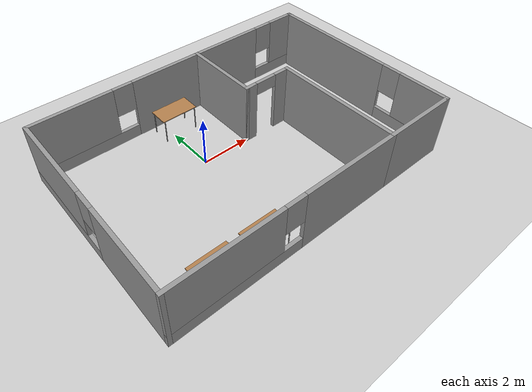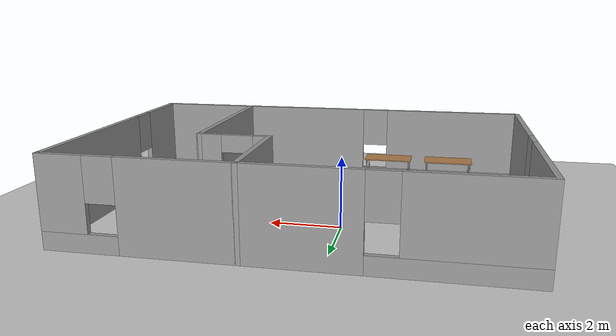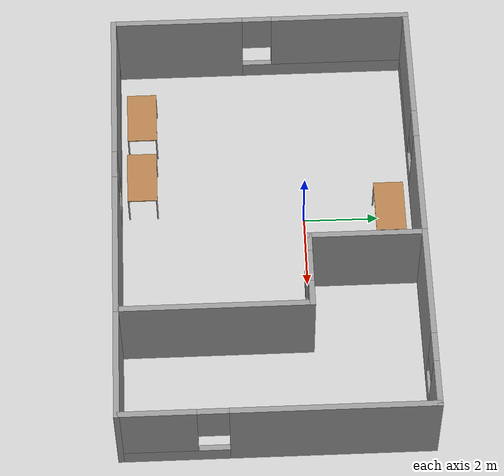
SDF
<sdf version="1.7">
 <world name="default">
  <light name="sun" type="directional">
   <pose>0 0 10 0 -0 0</pose>
   <diffuse>0.8 0.8 0.8 1</diffuse>
   <specular>0.2 0.2 0.2 1</specular>
   <attenuation>
    <range>1000</range>
    <constant>0.9</constant>
    <linear>0.01</linear>
    <quadratic>0.001</quadratic>
   </attenuation>
   <direction>-0.5 0.1 -0.9</direction>
   <spot><inner_angle>0</inner_angle><outer_angle>0</outer_angle><falloff>0</falloff></spot>
  </light>
  <model name="ground_plane">
   <static>1</static>
   <link name="link">
    <collision name="collision">
     <geometry><plane><normal>0 0 1</normal><size>100 100</size></plane></geometry>
     <surface><friction><ode><mu>100</mu><mu2>50</mu2></ode></friction></surface>
    </collision>
    <visual name="visual">
     <cast_shadows>0</cast_shadows>
     <geometry><plane><normal>0 0 1</normal><size>100 100</size></plane></geometry>
     <material>
      <script><uri>file://media/materials/scripts/gazebo.material</uri><name>Gazebo/Grey</name></script>
     </material>
    </visual>
   </link>
  </model>
  <gravity>0 0 -9.8</gravity>
  <magnetic_field>6e-06 2.3e-05 -4.2e-05</magnetic_field>
  <atmosphere type="adiabatic"/>
  <physics type="ode">
   <max_step_size>0.001</max_step_size>
   <real_time_factor>1</real_time_factor>
   <real_time_update_rate>1000</real_time_update_rate>
  </physics>
  <scene><ambient>0.4 0.4 0.4 1</ambient><background>0.7 0.7 0.7 1</background><shadows>1</shadows></scene>
  <spherical_coordinates>
   <surface_model>EARTH_WGS84</surface_model>
   <latitude_deg>0</latitude_deg>
   <longitude_deg>0</longitude_deg>
   <elevation>0</elevation>
   <heading_deg>0</heading_deg>
  </spherical_coordinates>
  <model name="Untitled">
   <pose>1 -1 0 0 -0 0</pose>
   <link name="Wall_11">
    <collision name="Wall_11_Collision">
     <geometry><box><size>3.15 0.15 2.5</size></box></geometry>
     <pose>0 0 1.25 0 -0 0</pose>
    </collision>
    <visual name="Wall_11_Visual">
     <pose>0 0 1.25 0 -0 0</pose>
     <geometry><box><size>3.15 0.15 2.5</size></box></geometry>
     <material>
      <script><uri>file://media/materials/scripts/gazebo.material</uri><name>Gazebo/Grey</name></script>
      <ambient>1 1 1 1</ambient>
     </material>
     <meta><layer>0</layer></meta>
    </visual>
    <pose>1 2.5 0 0 -0 -1.5708</pose>
   </link>
   <link name="Wall_12">
    <pose>2 1 0 0 -0 0</pose>
    <visual name="Wall_12_Visual_0">
     <pose>-0.811577 0 1.25 0 -0 0</pose>
     <geometry><box><size>0.526845 0.15 2.5</size></box></geometry>
     <material>
      <script><uri>file://media/materials/scripts/gazebo.material</uri><name>Gazebo/Grey</name></script>
      <ambient>1 1 1 1</ambient>
     </material>
     <meta><layer>0</layer></meta>
    </visual>
    <collision name="Wall_12_Collision_0">
     <geometry><box><size>0.526845 0.15 2.5</size></box></geometry>
     <pose>-0.811577 0 1.25 0 -0 0</pose>
    </collision>
    <visual name="Wall_12_Visual_1">
     <pose>0.713423 0 1.25 0 -0 0</pose>
     <geometry><box><size>0.723155 0.15 2.5</size></box></geometry>
     <material>
      <script><uri>file://media/materials/scripts/gazebo.material</uri><name>Gazebo/Grey</name></script>
      <ambient>1 1 1 1</ambient>
     </material>
     <meta><layer>0</layer></meta>
    </visual>
    <collision name="Wall_12_Collision_1">
     <geometry><box><size>0.723155 0.15 2.5</size></box></geometry>
     <pose>0.713423 0 1.25 0 -0 0</pose>
    </collision>
    <visual name="Wall_12_Visual_2">
     <pose>-0.098155 0 2.25 0 -0 0</pose>
     <geometry><box><size>0.9 0.15 0.5</size></box></geometry>
     <material>
      <script><uri>file://media/materials/scripts/gazebo.material</uri><name>Gazebo/Grey</name></script>
      <ambient>1 1 1 1</ambient>
     </material>
     <meta><layer>0</layer></meta>
    </visual>
    <collision name="Wall_12_Collision_2">
     <geometry><box><size>0.9 0.15 0.5</size></box></geometry>
     <pose>-0.098155 0 2.25 0 -0 0</pose>
    </collision>
   </link>
   <link name="Wall_13">
    <collision name="Wall_13_Collision">
     <geometry><box><size>5.15 0.15 2.5</size></box></geometry>
     <pose>0 0 1.25 0 -0 0</pose>
    </collision>
    <visual name="Wall_13_Visual">
     <pose>0 0 1.25 0 -0 0</pose>
     <geometry><box><size>5.15 0.15 2.5</size></box></geometry>
     <material>
      <script><uri>file://media/materials/scripts/gazebo.material</uri><name>Gazebo/Grey</name></script>
      <ambient>1 1 1 1</ambient>
     </material>
     <meta><layer>0</layer></meta>
    </visual>
    <pose>3 -1.5 0 0 -0 -1.5708</pose>
   </link>
   <link name="Wall_14">
    <pose>-1.5 -4 0 0 -0 3.14159</pose>
    <visual name="Wall_14_Visual_0">
     <pose>-2.53655 0 1.25 0 -0 0</pose>
     <geometry><box><size>4.0769 0.15 2.5</size></box></geometry>
     <material>
      <script><uri>file://media/materials/scripts/gazebo.material</uri><name>Gazebo/Grey</name></script>
      <ambient>1 1 1 1</ambient>
     </material>
     <meta><layer>0</layer></meta>
    </visual>
    <collision name="Wall_14_Collision_0">
     <geometry><box><size>4.0769 0.15 2.5</size></box></geometry>
     <pose>-2.53655 0 1.25 0 -0 0</pose>
    </collision>
    <visual name="Wall_14_Visual_1">
     <pose>2.03845 0 0.25 0 -0 0</pose>
     <geometry><box><size>5.0731 0.15 0.5</size></box></geometry>
     <material>
      <script><uri>file://media/materials/scripts/gazebo.material</uri><name>Gazebo/Grey</name></script>
      <ambient>1 1 1 1</ambient>
     </material>
     <meta><layer>0</layer></meta>
    </visual>
    <collision name="Wall_14_Collision_1">
     <geometry><box><size>5.0731 0.15 0.5</size></box></geometry>
     <pose>2.03845 0 0.25 0 -0 0</pose>
    </collision>
    <visual name="Wall_14_Visual_2">
     <pose>2.43845 0 1.5 0 -0 0</pose>
     <geometry><box><size>4.2731 0.15 2</size></box></geometry>
     <material>
      <script><uri>file://media/materials/scripts/gazebo.material</uri><name>Gazebo/Grey</name></script>
      <ambient>1 1 1 1</ambient>
     </material>
     <meta><layer>0</layer></meta>
    </visual>
    <collision name="Wall_14_Collision_2">
     <geometry><box><size>4.2731 0.15 2</size></box></geometry>
     <pose>2.43845 0 1.5 0 -0 0</pose>
    </collision>
    <visual name="Wall_14_Visual_3">
     <pose>-0.098101 0 1.9 0 -0 0</pose>
     <geometry><box><size>0.8 0.15 1.2</size></box></geometry>
     <material>
      <script><uri>file://media/materials/scripts/gazebo.material</uri><name>Gazebo/Grey</name></script>
      <ambient>1 1 1 1</ambient>
     </material>
     <meta><layer>0</layer></meta>
    </visual>
    <collision name="Wall_14_Collision_3">
     <geometry><box><size>0.8 0.15 1.2</size></box></geometry>
     <pose>-0.098101 0 1.9 0 -0 0</pose>
    </collision>
   </link>
   <link name="Wall_15">
    <pose>-6 0 0 0 -0 1.5708</pose>
    <visual name="Wall_15_Visual_0">
     <pose>-2.28017 0 1.25 0 -0 0</pose>
     <geometry><box><size>3.58965 0.15 2.5</size></box></geometry>
     <material>
      <script><uri>file://media/materials/scripts/gazebo.material</uri><name>Gazebo/Grey</name></script>
      <ambient>1 1 1 1</ambient>
     </material>
     <meta><layer>0</layer></meta>
    </visual>
    <collision name="Wall_15_Collision_0">
     <geometry><box><size>3.58965 0.15 2.5</size></box></geometry>
     <pose>-2.28017 0 1.25 0 -0 0</pose>
    </collision>
    <visual name="Wall_15_Visual_1">
     <pose>1.79483 0 0.25 0 -0 0</pose>
     <geometry><box><size>4.56035 0.15 0.5</size></box></geometry>
     <material>
      <script><uri>file://media/materials/scripts/gazebo.material</uri><name>Gazebo/Grey</name></script>
      <ambient>1 1 1 1</ambient>
     </material>
     <meta><layer>0</layer></meta>
    </visual>
    <collision name="Wall_15_Collision_1">
     <geometry><box><size>4.56035 0.15 0.5</size></box></geometry>
     <pose>1.79483 0 0.25 0 -0 0</pose>
    </collision>
    <visual name="Wall_15_Visual_2">
     <pose>2.19483 0 1.5 0 -0 0</pose>
     <geometry><box><size>3.76035 0.15 2</size></box></geometry>
     <material>
      <script><uri>file://media/materials/scripts/gazebo.material</uri><name>Gazebo/Grey</name></script>
      <ambient>1 1 1 1</ambient>
     </material>
     <meta><layer>0</layer></meta>
    </visual>
    <collision name="Wall_15_Collision_2">
     <geometry><box><size>3.76035 0.15 2</size></box></geometry>
     <pose>2.19483 0 1.5 0 -0 0</pose>
    </collision>
    <visual name="Wall_15_Visual_3">
     <pose>-0.085346 0 1.9 0 -0 0</pose>
     <geometry><box><size>0.8 0.15 1.2</size></box></geometry>
     <material>
      <script><uri>file://media/materials/scripts/gazebo.material</uri><name>Gazebo/Grey</name></script>
      <ambient>1 1 1 1</ambient>
     </material>
     <meta><layer>0</layer></meta>
    </visual>
    <collision name="Wall_15_Collision_3">
     <geometry><box><size>0.8 0.15 1.2</size></box></geometry>
     <pose>-0.085346 0 1.9 0 -0 0</pose>
    </collision>
   </link>
   <link name="Wall_18">
    <pose>-2.5 4 0 0 -0 3.14159</pose>
    <visual name="Wall_18_Visual_0">
     <pose>-2.04711 0 1.25 0 -0 0</pose>
     <geometry><box><size>3.05579 0.15 2.5</size></box></geometry>
     <material>
      <script><uri>file://media/materials/scripts/gazebo.material</uri><name>Gazebo/Grey</name></script>
      <ambient>1 1 1 1</ambient>
     </material>
     <meta><layer>0</layer></meta>
    </visual>
    <collision name="Wall_18_Collision_0">
     <geometry><box><size>3.05579 0.15 2.5</size></box></geometry>
     <pose>-2.04711 0 1.25 0 -0 0</pose>
    </collision>
    <visual name="Wall_18_Visual_1">
     <pose>1.52789 0 0.25 0 -0 0</pose>
     <geometry><box><size>4.09421 0.15 0.5</size></box></geometry>
     <material>
      <script><uri>file://media/materials/scripts/gazebo.material</uri><name>Gazebo/Grey</name></script>
      <ambient>1 1 1 1</ambient>
     </material>
     <meta><layer>0</layer></meta>
    </visual>
    <collision name="Wall_18_Collision_1">
     <geometry><box><size>4.09421 0.15 0.5</size></box></geometry>
     <pose>1.52789 0 0.25 0 -0 0</pose>
    </collision>
    <visual name="Wall_18_Visual_2">
     <pose>1.92789 0 1.5 0 -0 0</pose>
     <geometry><box><size>3.29421 0.15 2</size></box></geometry>
     <material>
      <script><uri>file://media/materials/scripts/gazebo.material</uri><name>Gazebo/Grey</name></script>
      <ambient>1 1 1 1</ambient>
     </material>
     <meta><layer>0</layer></meta>
    </visual>
    <collision name="Wall_18_Collision_2">
     <geometry><box><size>3.29421 0.15 2</size></box></geometry>
     <pose>1.92789 0 1.5 0 -0 0</pose>
    </collision>
    <visual name="Wall_18_Visual_3">
     <pose>-0.119213 0 1.9 0 -0 0</pose>
     <geometry><box><size>0.8 0.15 1.2</size></box></geometry>
     <material>
      <script><uri>file://media/materials/scripts/gazebo.material</uri><name>Gazebo/Grey</name></script>
      <ambient>1 1 1 1</ambient>
     </material>
     <meta><layer>0</layer></meta>
    </visual>
    <collision name="Wall_18_Collision_3">
     <geometry><box><size>0.8 0.15 1.2</size></box></geometry>
     <pose>-0.119213 0 1.9 0 -0 0</pose>
    </collision>
   </link>
   <link name="Wall_20">
    <pose>3.5 4 0 0 -0 0</pose>
    <visual name="Wall_20_Visual_0">
     <pose>-1.03238 0 1.25 0 -0 0</pose>
     <geometry><box><size>3.08524 0.15 2.5</size></box></geometry>
     <material>
      <script><uri>file://media/materials/scripts/gazebo.material</uri><name>Gazebo/Grey</name></script>
      <ambient>1 1 1 1</ambient>
     </material>
     <meta><layer>0</layer></meta>
    </visual>
    <collision name="Wall_20_Collision_0">
     <geometry><box><size>3.08524 0.15 2.5</size></box></geometry>
     <pose>-1.03238 0 1.25 0 -0 0</pose>
    </collision>
    <visual name="Wall_20_Visual_1">
     <pose>1.54262 0 0.25 0 -0 0</pose>
     <geometry><box><size>2.06476 0.15 0.5</size></box></geometry>
     <material>
      <script><uri>file://media/materials/scripts/gazebo.material</uri><name>Gazebo/Grey</name></script>
      <ambient>1 1 1 1</ambient>
     </material>
     <meta><layer>0</layer></meta>
    </visual>
    <collision name="Wall_20_Collision_1">
     <geometry><box><size>2.06476 0.15 0.5</size></box></geometry>
     <pose>1.54262 0 0.25 0 -0 0</pose>
    </collision>
    <visual name="Wall_20_Visual_2">
     <pose>1.94262 0 1.5 0 -0 0</pose>
     <geometry><box><size>1.26476 0.15 2</size></box></geometry>
     <material>
      <script><uri>file://media/materials/scripts/gazebo.material</uri><name>Gazebo/Grey</name></script>
      <ambient>1 1 1 1</ambient>
     </material>
     <meta><layer>0</layer></meta>
    </visual>
    <collision name="Wall_20_Collision_2">
     <geometry><box><size>1.26476 0.15 2</size></box></geometry>
     <pose>1.94262 0 1.5 0 -0 0</pose>
    </collision>
    <visual name="Wall_20_Visual_3">
     <pose>0.910244 0 1.9 0 -0 0</pose>
     <geometry><box><size>0.8 0.15 1.2</size></box></geometry>
     <material>
      <script><uri>file://media/materials/scripts/gazebo.material</uri><name>Gazebo/Grey</name></script>
      <ambient>1 1 1 1</ambient>
     </material>
     <meta><layer>0</layer></meta>
    </visual>
    <collision name="Wall_20_Collision_3">
     <geometry><box><size>0.8 0.15 1.2</size></box></geometry>
     <pose>0.910244 0 1.9 0 -0 0</pose>
    </collision>
   </link>
   <link name="Wall_21">
    <pose>6 0 0 0 -0 -1.5708</pose>
    <visual name="Wall_21_Visual_0">
     <pose>-1.43007 0 1.25 0 -0 0</pose>
     <geometry><box><size>5.28986 0.15 2.5</size></box></geometry>
     <material>
      <script><uri>file://media/materials/scripts/gazebo.material</uri><name>Gazebo/Grey</name></script>
      <ambient>1 1 1 1</ambient>
     </material>
     <meta><layer>0</layer></meta>
    </visual>
    <collision name="Wall_21_Collision_0">
     <geometry><box><size>5.28986 0.15 2.5</size></box></geometry>
     <pose>-1.43007 0 1.25 0 -0 0</pose>
    </collision>
    <visual name="Wall_21_Visual_1">
     <pose>2.64493 0 0.25 0 -0 0</pose>
     <geometry><box><size>2.86014 0.15 0.5</size></box></geometry>
     <material>
      <script><uri>file://media/materials/scripts/gazebo.material</uri><name>Gazebo/Grey</name></script>
      <ambient>1 1 1 1</ambient>
     </material>
     <meta><layer>0</layer></meta>
    </visual>
    <collision name="Wall_21_Collision_1">
     <geometry><box><size>2.86014 0.15 0.5</size></box></geometry>
     <pose>2.64493 0 0.25 0 -0 0</pose>
    </collision>
    <visual name="Wall_21_Visual_2">
     <pose>3.04493 0 1.5 0 -0 0</pose>
     <geometry><box><size>2.06014 0.15 2</size></box></geometry>
     <material>
      <script><uri>file://media/materials/scripts/gazebo.material</uri><name>Gazebo/Grey</name></script>
      <ambient>1 1 1 1</ambient>
     </material>
     <meta><layer>0</layer></meta>
    </visual>
    <collision name="Wall_21_Collision_2">
     <geometry><box><size>2.06014 0.15 2</size></box></geometry>
     <pose>3.04493 0 1.5 0 -0 0</pose>
    </collision>
    <visual name="Wall_21_Visual_3">
     <pose>1.61486 0 1.9 0 -0 0</pose>
     <geometry><box><size>0.8 0.15 1.2</size></box></geometry>
     <material>
      <script><uri>file://media/materials/scripts/gazebo.material</uri><name>Gazebo/Grey</name></script>
      <ambient>1 1 1 1</ambient>
     </material>
     <meta><layer>0</layer></meta>
    </visual>
    <collision name="Wall_21_Collision_3">
     <geometry><box><size>0.8 0.15 1.2</size></box></geometry>
     <pose>1.61486 0 1.9 0 -0 0</pose>
    </collision>
   </link>
   <link name="Wall_22">
    <collision name="Wall_22_Collision">
     <geometry><box><size>3.15 0.15 2.5</size></box></geometry>
     <pose>0 0 1.25 0 -0 0</pose>
    </collision>
    <visual name="Wall_22_Visual">
     <pose>0 0 1.25 0 -0 0</pose>
     <geometry><box><size>3.15 0.15 2.5</size></box></geometry>
     <material>
      <script><uri>file://media/materials/scripts/gazebo.material</uri><name>Gazebo/Grey</name></script>
      <ambient>1 1 1 1</ambient>
     </material>
     <meta><layer>0</layer></meta>
    </visual>
    <pose>4.5 -4 0 0 -0 3.14159</pose>
   </link>
   <static>1</static>
  </model>
  <model name="Table">
   <static>1</static>
   <link name="link">
    <collision name="surface">
     <pose>0 0 1 0 -0 0</pose>
     <geometry><box><size>1.5 0.8 0.03</size></box></geometry>
     <surface><friction><ode><mu>0.6</mu><mu2>0.6</mu2></ode></friction></surface>
    </collision>
    <visual name="visual1">
     <pose>0 0 1 0 -0 0</pose>
     <geometry><box><size>1.5 0.8 0.03</size></box></geometry>
     <material>
      <diffuse>1 1 1 1</diffuse>
      <script><uri>file://media/materials/scripts/gazebo.material</uri><name>Gazebo/Wood</name></script>
      <pbr>
       <metal>
        <albedo_map>https://fuel.ignitionrobotics.org/1.0/openrobotics/models/table/3/files/Table_Diffuse.jpg</albedo_map>
       </metal>
      </pbr>
     </material>
    </visual>
    <collision name="front_left_leg">
     <pose>0.68 0.38 0.5 0 -0 0</pose>
     <geometry><cylinder><radius>0.02</radius><length>1</length></cylinder></geometry>
    </collision>
    <visual name="front_left_leg">
     <pose>0.68 0.38 0.5 0 -0 0</pose>
     <geometry><cylinder><radius>0.02</radius><length>1</length></cylinder></geometry>
     <material>
      <diffuse>0.5 0.5 0.5 1</diffuse>
      <script><uri>file://media/materials/scripts/gazebo.material</uri><name>Gazebo/Grey</name></script>
     </material>
    </visual>
    <collision name="front_right_leg">
     <pose>0.68 -0.38 0.5 0 -0 0</pose>
     <geometry><cylinder><radius>0.02</radius><length>1</length></cylinder></geometry>
    </collision>
    <visual name="front_right_leg">
     <pose>0.68 -0.38 0.5 0 -0 0</pose>
     <geometry><cylinder><radius>0.02</radius><length>1</length></cylinder></geometry>
     <material>
      <diffuse>0.5 0.5 0.5 1</diffuse>
      <script><uri>file://media/materials/scripts/gazebo.material</uri><name>Gazebo/Grey</name></script>
     </material>
    </visual>
    <collision name="back_right_leg">
     <pose>-0.68 -0.38 0.5 0 -0 0</pose>
     <geometry><cylinder><radius>0.02</radius><length>1</length></cylinder></geometry>
    </collision>
    <visual name="back_right_leg">
     <pose>-0.68 -0.38 0.5 0 -0 0</pose>
     <geometry><cylinder><radius>0.02</radius><length>1</length></cylinder></geometry>
     <material>
      <diffuse>0.5 0.5 0.5 1</diffuse>
      <script><uri>file://media/materials/scripts/gazebo.material</uri><name>Gazebo/Grey</name></script>
     </material>
    </visual>
    <collision name="back_left_leg">
     <pose>-0.68 0.38 0.5 0 -0 0</pose>
     <geometry><cylinder><radius>0.02</radius><length>1</length></cylinder></geometry>
    </collision>
    <visual name="back_left_leg">
     <pose>-0.68 0.38 0.5 0 -0 0</pose>
     <geometry><cylinder><radius>0.02</radius><length>1</length></cylinder></geometry>
     <material>
      <diffuse>0.5 0.5 0.5 1</diffuse>
      <script><uri>file://media/materials/scripts/gazebo.material</uri><name>Gazebo/Grey</name></script>
     </material>
    </visual>
   </link>
   <pose>0.250751 2.28016 0 0 -0 0</pose>
  </model>
  <model name="Table_clone">
   <static>1</static>
   <link name="link">
    <collision name="surface">
     <pose>0 0 1 0 -0 0</pose>
     <geometry><box><size>1.5 0.8 0.03</size></box></geometry>
     <surface><friction><ode><mu>0.6</mu><mu2>0.6</mu2></ode></friction></surface>
    </collision>
    <visual name="visual1">
     <pose>0 0 1 0 -0 0</pose>
     <geometry><box><size>1.5 0.8 0.03</size></box></geometry>
     <material>
      <diffuse>1 1 1 1</diffuse>
      <script><uri>file://media/materials/scripts/gazebo.material</uri><name>Gazebo/Wood</name></script>
      <pbr>
       <metal>
        <albedo_map>https://fuel.ignitionrobotics.org/1.0/openrobotics/models/table/3/files/Table_Diffuse.jpg</albedo_map>
       </metal>
      </pbr>
     </material>
    </visual>
    <collision name="front_left_leg">
     <pose>0.68 0.38 0.5 0 -0 0</pose>
     <geometry><cylinder><radius>0.02</radius><length>1</length></cylinder></geometry>
    </collision>
    <visual name="front_left_leg">
     <pose>0.68 0.38 0.5 0 -0 0</pose>
     <geometry><cylinder><radius>0.02</radius><length>1</length></cylinder></geometry>
     <material>
      <diffuse>0.5 0.5 0.5 1</diffuse>
      <script><uri>file://media/materials/scripts/gazebo.material</uri><name>Gazebo/Grey</name></script>
     </material>
    </visual>
    <collision name="front_right_leg">
     <pose>0.68 -0.38 0.5 0 -0 0</pose>
     <geometry><cylinder><radius>0.02</radius><length>1</length></cylinder></geometry>
    </collision>
    <visual name="front_right_leg">
     <pose>0.68 -0.38 0.5 0 -0 0</pose>
     <geometry><cylinder><radius>0.02</radius><length>1</length></cylinder></geometry>
     <material>
      <diffuse>0.5 0.5 0.5 1</diffuse>
      <script><uri>file://media/materials/scripts/gazebo.material</uri><name>Gazebo/Grey</name></script>
     </material>
    </visual>
    <collision name="back_right_leg">
     <pose>-0.68 -0.38 0.5 0 -0 0</pose>
     <geometry><cylinder><radius>0.02</radius><length>1</length></cylinder></geometry>
    </collision>
    <visual name="back_right_leg">
     <pose>-0.68 -0.38 0.5 0 -0 0</pose>
     <geometry><cylinder><radius>0.02</radius><length>1</length></cylinder></geometry>
     <material>
      <diffuse>0.5 0.5 0.5 1</diffuse>
      <script><uri>file://media/materials/scripts/gazebo.material</uri><name>Gazebo/Grey</name></script>
     </material>
    </visual>
    <collision name="back_left_leg">
     <pose>-0.68 0.38 0.5 0 -0 0</pose>
     <geometry><cylinder><radius>0.02</radius><length>1</length></cylinder></geometry>
    </collision>
    <visual name="back_left_leg">
     <pose>-0.68 0.38 0.5 0 -0 0</pose>
     <geometry><cylinder><radius>0.02</radius><length>1</length></cylinder></geometry>
     <material>
      <diffuse>0.5 0.5 0.5 1</diffuse>
      <script><uri>file://media/materials/scripts/gazebo.material</uri><name>Gazebo/Grey</name></script>
     </material>
    </visual>
   </link>
   <pose>-0.925049 -4.33456 0 0 -0 0</pose>
  </model>
  <model name="Table_clone_clone">
   <static>1</static>
   <link name="link">
    <collision name="surface">
     <pose>0 0 1 0 -0 0</pose>
     <geometry><box><size>1.5 0.8 0.03</size></box></geometry>
     <surface><friction><ode><mu>0.6</mu><mu2>0.6</mu2></ode></friction></surface>
    </collision>
    <visual name="visual1">
     <pose>0 0 1 0 -0 0</pose>
     <geometry><box><size>1.5 0.8 0.03</size></box></geometry>
     <material>
      <diffuse>1 1 1 1</diffuse>
      <script><uri>file://media/materials/scripts/gazebo.material</uri><name>Gazebo/Wood</name></script>
      <pbr>
       <metal>
        <albedo_map>https://fuel.ignitionrobotics.org/1.0/openrobotics/models/table/3/files/Table_Diffuse.jpg</albedo_map>
       </metal>
      </pbr>
     </material>
    </visual>
    <collision name="front_left_leg">
     <pose>0.68 0.38 0.5 0 -0 0</pose>
     <geometry><cylinder><radius>0.02</radius><length>1</length></cylinder></geometry>
    </collision>
    <visual name="front_left_leg">
     <pose>0.68 0.38 0.5 0 -0 0</pose>
     <geometry><cylinder><radius>0.02</radius><length>1</length></cylinder></geometry>
     <material>
      <diffuse>0.5 0.5 0.5 1</diffuse>
      <script><uri>file://media/materials/scripts/gazebo.material</uri><name>Gazebo/Grey</name></script>
     </material>
    </visual>
    <collision name="front_right_leg">
     <pose>0.68 -0.38 0.5 0 -0 0</pose>
     <geometry><cylinder><radius>0.02</radius><length>1</length></cylinder></geometry>
    </collision>
    <visual name="front_right_leg">
     <pose>0.68 -0.38 0.5 0 -0 0</pose>
     <geometry><cylinder><radius>0.02</radius><length>1</length></cylinder></geometry>
     <material>
      <diffuse>0.5 0.5 0.5 1</diffuse>
      <script><uri>file://media/materials/scripts/gazebo.material</uri><name>Gazebo/Grey</name></script>
     </material>
    </visual>
    <collision name="back_right_leg">
     <pose>-0.68 -0.38 0.5 0 -0 0</pose>
     <geometry><cylinder><radius>0.02</radius><length>1</length></cylinder></geometry>
    </collision>
    <visual name="back_right_leg">
     <pose>-0.68 -0.38 0.5 0 -0 0</pose>
     <geometry><cylinder><radius>0.02</radius><length>1</length></cylinder></geometry>
     <material>
      <diffuse>0.5 0.5 0.5 1</diffuse>
      <script><uri>file://media/materials/scripts/gazebo.material</uri><name>Gazebo/Grey</name></script>
     </material>
    </visual>
    <collision name="back_left_leg">
     <pose>-0.68 0.38 0.5 0 -0 0</pose>
     <geometry><cylinder><radius>0.02</radius><length>1</length></cylinder></geometry>
    </collision>
    <visual name="back_left_leg">
     <pose>-0.68 0.38 0.5 0 -0 0</pose>
     <geometry><cylinder><radius>0.02</radius><length>1</length></cylinder></geometry>
     <material>
      <diffuse>0.5 0.5 0.5 1</diffuse>
      <script><uri>file://media/materials/scripts/gazebo.material</uri><name>Gazebo/Grey</name></script>
     </material>
    </visual>
   </link>
   <pose>-2.87569 -4.31546 0 0 -0 0</pose>
  </model>
 </world>
</sdf>
